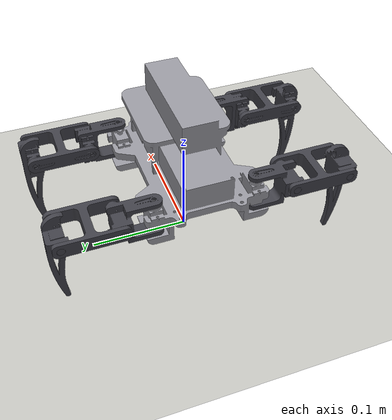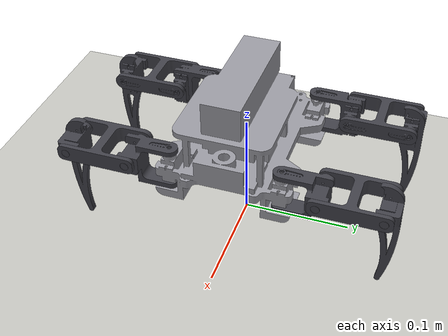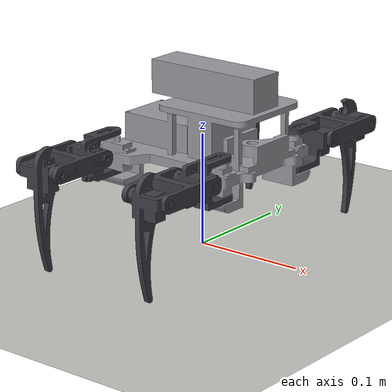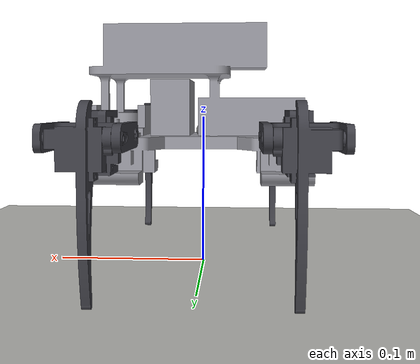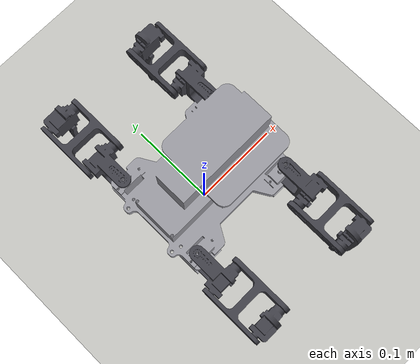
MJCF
<mujoco model="spidy">
  <compiler angle="radian" meshdir="../meshes/"/>

  <option integrator="implicitfast"/>

  <visual>
    <global offwidth="1280" offheight="960"/>
  </visual>

  <asset>
    <texture type="2d" colorspace="auto" name="grid" builtin="checker" rgb1="0.82 0.82 0.8" rgb2="0.72 0.72 0.7" width="512" height="512"/>
    <material name="grid" texture="grid" texrepeat="20 20"/>
    <mesh name="base_link" file="base_link.stl"/>
    <mesh name="fl_coxa" file="fl_coxa.stl"/>
    <mesh name="fl_femur" file="fl_femur.stl"/>
    <mesh name="fl_tibia" file="fl_tibia.stl"/>
    <mesh name="fr_coxa" file="fr_coxa.stl"/>
    <mesh name="fr_femur" file="fr_femur.stl"/>
    <mesh name="fr_tibia" file="fr_tibia.stl"/>
    <mesh name="bl_coxa" file="bl_coxa.stl"/>
    <mesh name="bl_femur" file="bl_femur.stl"/>
    <mesh name="bl_tibia" file="bl_tibia.stl"/>
    <mesh name="br_coxa" file="br_coxa.stl"/>
    <mesh name="br_femur" file="br_femur.stl"/>
    <mesh name="br_tibia" file="br_tibia.stl"/>
  </asset>

  <worldbody>
    <geom name="floor" size="2 2 0.05" type="plane" material="grid"/>
    <light pos="0 0 1.5" type="directional"/>
    <body name="base_link" pos="0 0 0.0909">
      <inertial pos="0.0121647 -0.000138725 0.0231342" quat="0.544247 0.456182 0.45671 0.535825" mass="0.517075" diaginertia="0.00130565 0.00108044 0.000819073"/>
      <joint name="root" type="free"/>
      <geom quat="1 0 0 0" type="mesh" contype="0" conaffinity="0" group="1" rgba="0.6 0.6 0.63 1" density="0" mesh="base_link"/>
      <geom size="0.0786 0.061 0.0151" pos="2.86102e-09 0 -0.0179" type="box" group="3" rgba="0.55 0.55 0.58 1"/>
      <geom size="0.0714 0.043 0.0375" pos="0.00411249 0 0.0347" type="box" group="3" rgba="0.55 0.55 0.58 1"/>
      <site name="imu"/>
      <body name="fl_coxa" pos="0.06 0.05 0">
        <inertial pos="-0.00178525 0.0295615 -0.00439371" quat="0.850268 0.512865 0.0168767 0.117174" mass="0.0200143" diaginertia="4.09863e-06 3.49091e-06 2.91166e-06"/>
        <joint name="fl_hip" range="-1.5708 1.5708" actuatorfrcrange="-0.21 0.21" armature="0.0002" damping="0.01" frictionloss="0.005"/>
        <geom quat="1 0 0 0" type="mesh" contype="0" conaffinity="0" group="1" rgba="0.25 0.25 0.28 1" density="0" mesh="fl_coxa"/>
        <body name="fl_femur" pos="0 0.0342 0">
          <inertial pos="-0.00630845 0.0278224 5.95122e-10" quat="0.051045 0.705262 -0.0510469 0.705262" mass="0.00891947" diaginertia="5.38e-06 2.88631e-06 2.78449e-06"/>
          <joint name="fl_knee" range="-1.5708 1.5708" actuatorfrcrange="-0.21 0.21" armature="0.0002" damping="0.01" frictionloss="0.005" axis="1 0 0"/>
          <geom quat="1 0 0 0" type="mesh" contype="0" conaffinity="0" group="1" rgba="0.25 0.25 0.28 1" density="0" mesh="fl_femur"/>
          <body name="fl_tibia" pos="0 0.0558 0">
            <inertial pos="-0.00325911 0.00066042 -0.00898153" quat="0.698815 0.0214111 0.00379377 0.714972" mass="0.0179021" diaginertia="5.8423e-06 5.08082e-06 1.36038e-06"/>
            <joint name="fl_claw" range="-1.5708 1.5708" actuatorfrcrange="-0.21 0.21" armature="0.0002" damping="0.01" frictionloss="0.005" axis="1 0 0"/>
            <geom quat="1 0 0 0" type="mesh" contype="0" conaffinity="0" group="1" rgba="0.25 0.25 0.28 1" density="0" mesh="fl_tibia"/>
            <geom size="0.004" pos="-0.005 -0.00121 -0.0849" group="3" friction="0.9" rgba="0.9 0.3 0.1 1"/>
            <body name="fl_foot" pos="-0.005 -0.00121 -0.0889"/>
          </body>
        </body>
      </body>
      <body name="fr_coxa" pos="0.06 -0.05 0">
        <inertial pos="-0.00178525 -0.0295615 -0.00439371" quat="0.512865 0.850268 -0.117174 -0.0168767" mass="0.0200143" diaginertia="4.09863e-06 3.49091e-06 2.91166e-06"/>
        <joint name="fr_hip" range="-1.5708 1.5708" actuatorfrcrange="-0.21 0.21" armature="0.0002" damping="0.01" frictionloss="0.005"/>
        <geom quat="1 0 0 0" type="mesh" contype="0" conaffinity="0" group="1" rgba="0.25 0.25 0.28 1" density="0" mesh="fr_coxa"/>
        <body name="fr_femur" pos="0 -0.0342 0">
          <inertial pos="-0.00630845 -0.0278224 5.95122e-10" quat="-0.051045 0.705262 0.0510469 0.705262" mass="0.00891947" diaginertia="5.38e-06 2.88631e-06 2.78449e-06"/>
          <joint name="fr_knee" range="-1.5708 1.5708" actuatorfrcrange="-0.21 0.21" armature="0.0002" damping="0.01" frictionloss="0.005" axis="1 0 0"/>
          <geom quat="1 0 0 0" type="mesh" contype="0" conaffinity="0" group="1" rgba="0.25 0.25 0.28 1" density="0" mesh="fr_femur"/>
          <body name="fr_tibia" pos="0 -0.0558 0">
            <inertial pos="-0.00325911 -0.00066042 -0.00898153" quat="0.714972 0.00379377 0.0214111 0.698815" mass="0.0179021" diaginertia="5.8423e-06 5.08082e-06 1.36038e-06"/>
            <joint name="fr_claw" range="-1.5708 1.5708" actuatorfrcrange="-0.21 0.21" armature="0.0002" damping="0.01" frictionloss="0.005" axis="1 0 0"/>
            <geom quat="1 0 0 0" type="mesh" contype="0" conaffinity="0" group="1" rgba="0.25 0.25 0.28 1" density="0" mesh="fr_tibia"/>
            <geom size="0.004" pos="-0.005 0.00121 -0.0849" group="3" friction="0.9" rgba="0.9 0.3 0.1 1"/>
            <body name="fr_foot" pos="-0.005 0.00121 -0.0889"/>
          </body>
        </body>
      </body>
      <body name="bl_coxa" pos="-0.06 0.05 0">
        <inertial pos="0.00178525 0.0295615 -0.00439371" quat="0.850268 0.512865 -0.0168767 -0.117174" mass="0.0200143" diaginertia="4.09863e-06 3.49091e-06 2.91166e-06"/>
        <joint name="bl_hip" range="-1.5708 1.5708" actuatorfrcrange="-0.21 0.21" armature="0.0002" damping="0.01" frictionloss="0.005"/>
        <geom quat="1 0 0 0" type="mesh" contype="0" conaffinity="0" group="1" rgba="0.25 0.25 0.28 1" density="0" mesh="bl_coxa"/>
        <body name="bl_femur" pos="0 0.0342 0">
          <inertial pos="0.00630845 0.0278224 5.95122e-10" quat="-0.0510469 0.705262 0.051045 0.705262" mass="0.00891947" diaginertia="5.38e-06 2.88631e-06 2.78449e-06"/>
          <joint name="bl_knee" range="-1.5708 1.5708" actuatorfrcrange="-0.21 0.21" armature="0.0002" damping="0.01" frictionloss="0.005" axis="1 0 0"/>
          <geom quat="1 0 0 0" type="mesh" contype="0" conaffinity="0" group="1" rgba="0.25 0.25 0.28 1" density="0" mesh="bl_femur"/>
          <body name="bl_tibia" pos="0 0.0558 0">
            <inertial pos="0.00325911 0.00066042 -0.00898153" quat="0.714972 -0.00379377 -0.0214111 0.698815" mass="0.0179021" diaginertia="5.8423e-06 5.08082e-06 1.36038e-06"/>
            <joint name="bl_claw" range="-1.5708 1.5708" actuatorfrcrange="-0.21 0.21" armature="0.0002" damping="0.01" frictionloss="0.005" axis="1 0 0"/>
            <geom quat="1 0 0 0" type="mesh" contype="0" conaffinity="0" group="1" rgba="0.25 0.25 0.28 1" density="0" mesh="bl_tibia"/>
            <geom size="0.004" pos="0.005 -0.00121 -0.0849" group="3" friction="0.9" rgba="0.9 0.3 0.1 1"/>
            <body name="bl_foot" pos="0.005 -0.00121 -0.0889"/>
          </body>
        </body>
      </body>
      <body name="br_coxa" pos="-0.06 -0.05 0">
        <inertial pos="0.00178525 -0.0295615 -0.00439371" quat="0.512865 0.850268 0.117174 0.0168767" mass="0.0200143" diaginertia="4.09863e-06 3.49091e-06 2.91166e-06"/>
        <joint name="br_hip" range="-1.5708 1.5708" actuatorfrcrange="-0.21 0.21" armature="0.0002" damping="0.01" frictionloss="0.005"/>
        <geom quat="1 0 0 0" type="mesh" contype="0" conaffinity="0" group="1" rgba="0.25 0.25 0.28 1" density="0" mesh="br_coxa"/>
        <body name="br_femur" pos="0 -0.0342 0">
          <inertial pos="0.00630845 -0.0278224 5.95122e-10" quat="0.0510469 0.705262 -0.051045 0.705262" mass="0.00891947" diaginertia="5.38e-06 2.88631e-06 2.78449e-06"/>
          <joint name="br_knee" range="-1.5708 1.5708" actuatorfrcrange="-0.21 0.21" armature="0.0002" damping="0.01" frictionloss="0.005" axis="1 0 0"/>
          <geom quat="1 0 0 0" type="mesh" contype="0" conaffinity="0" group="1" rgba="0.25 0.25 0.28 1" density="0" mesh="br_femur"/>
          <body name="br_tibia" pos="0 -0.0558 0">
            <inertial pos="0.00325911 -0.00066042 -0.00898153" quat="0.698815 -0.0214111 -0.00379377 0.714972" mass="0.0179021" diaginertia="5.8423e-06 5.08082e-06 1.36038e-06"/>
            <joint name="br_claw" range="-1.5708 1.5708" actuatorfrcrange="-0.21 0.21" armature="0.0002" damping="0.01" frictionloss="0.005" axis="1 0 0"/>
            <geom quat="1 0 0 0" type="mesh" contype="0" conaffinity="0" group="1" rgba="0.25 0.25 0.28 1" density="0" mesh="br_tibia"/>
            <geom size="0.004" pos="0.005 0.00121 -0.0849" group="3" friction="0.9" rgba="0.9 0.3 0.1 1"/>
            <body name="br_foot" pos="0.005 0.00121 -0.0889"/>
          </body>
        </body>
      </body>
    </body>
  </worldbody>

  <actuator>
    <general name="fl_hip" joint="fl_hip" ctrlrange="-1.5708 1.5708" ctrllimited="true" forcelimited="true" forcerange="-0.21 0.21" biastype="affine" gainprm="4" biasprm="0 -4 -0.03"/>
    <general name="fl_knee" joint="fl_knee" ctrlrange="-1.5708 1.5708" ctrllimited="true" forcelimited="true" forcerange="-0.21 0.21" biastype="affine" gainprm="4" biasprm="0 -4 -0.03"/>
    <general name="fl_claw" joint="fl_claw" ctrlrange="-1.5708 1.5708" ctrllimited="true" forcelimited="true" forcerange="-0.21 0.21" biastype="affine" gainprm="4" biasprm="0 -4 -0.03"/>
    <general name="fr_hip" joint="fr_hip" ctrlrange="-1.5708 1.5708" ctrllimited="true" forcelimited="true" forcerange="-0.21 0.21" biastype="affine" gainprm="4" biasprm="0 -4 -0.03"/>
    <general name="fr_knee" joint="fr_knee" ctrlrange="-1.5708 1.5708" ctrllimited="true" forcelimited="true" forcerange="-0.21 0.21" biastype="affine" gainprm="4" biasprm="0 -4 -0.03"/>
    <general name="fr_claw" joint="fr_claw" ctrlrange="-1.5708 1.5708" ctrllimited="true" forcelimited="true" forcerange="-0.21 0.21" biastype="affine" gainprm="4" biasprm="0 -4 -0.03"/>
    <general name="bl_hip" joint="bl_hip" ctrlrange="-1.5708 1.5708" ctrllimited="true" forcelimited="true" forcerange="-0.21 0.21" biastype="affine" gainprm="4" biasprm="0 -4 -0.03"/>
    <general name="bl_knee" joint="bl_knee" ctrlrange="-1.5708 1.5708" ctrllimited="true" forcelimited="true" forcerange="-0.21 0.21" biastype="affine" gainprm="4" biasprm="0 -4 -0.03"/>
    <general name="bl_claw" joint="bl_claw" ctrlrange="-1.5708 1.5708" ctrllimited="true" forcelimited="true" forcerange="-0.21 0.21" biastype="affine" gainprm="4" biasprm="0 -4 -0.03"/>
    <general name="br_hip" joint="br_hip" ctrlrange="-1.5708 1.5708" ctrllimited="true" forcelimited="true" forcerange="-0.21 0.21" biastype="affine" gainprm="4" biasprm="0 -4 -0.03"/>
    <general name="br_knee" joint="br_knee" ctrlrange="-1.5708 1.5708" ctrllimited="true" forcelimited="true" forcerange="-0.21 0.21" biastype="affine" gainprm="4" biasprm="0 -4 -0.03"/>
    <general name="br_claw" joint="br_claw" ctrlrange="-1.5708 1.5708" ctrllimited="true" forcelimited="true" forcerange="-0.21 0.21" biastype="affine" gainprm="4" biasprm="0 -4 -0.03"/>
  </actuator>

  <sensor>
    <framequat objtype="site" objname="imu" name="imu_quat"/>
    <gyro site="imu" name="imu_gyro"/>
    <accelerometer site="imu" name="imu_acc"/>
  </sensor>
</mujoco>
